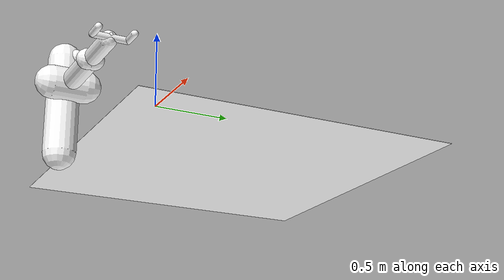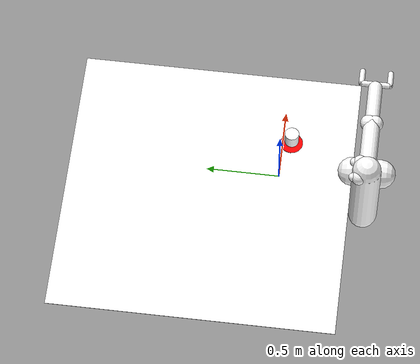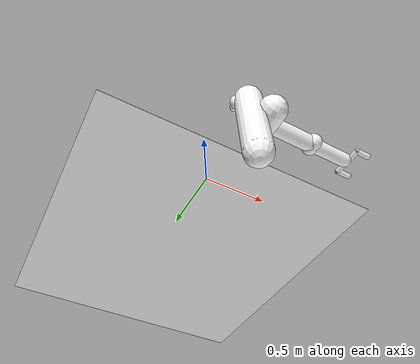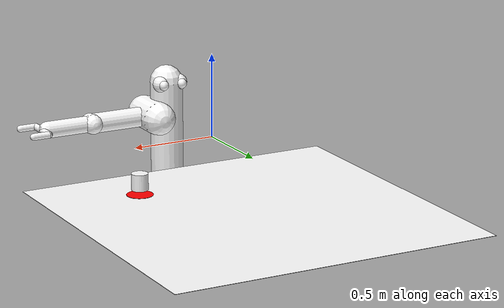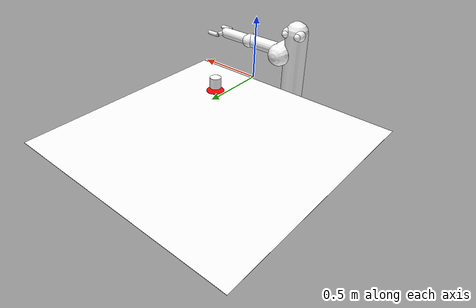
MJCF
<mujoco model="arm3d">
  <compiler inertiafromgeom="true" angle="radian" coordinate="local"/>
  <option timestep="0.01" gravity="0 0 0" iterations="20" integrator="Euler" />

  <asset>
    <texture type="2d" name="metal009_color" file="../textures/Metal009_2K-PNG/Metal009_2K-PNG_Color.png"/>
    <texture type="2d" name="oak_color" file="../textures/oak_veneer_01_2k/textures/oak_veneer_01_diff_2k.png"/>
    <texture type="2d" name="wood_table_color" file="../textures/wood_table_worn_2k/textures/wood_table_worn_diff_2k.png"/>

    <material name="metal009_material">
      <layer role="rgb" texture="metal009_color"/>
    </material>
    <material name="oak_wood_material">
      <layer role="rgb" texture="oak_color"/>
    </material>
    <material name="wood_table_worn_material">
      <layer role="rgb" texture="wood_table_color"/>
    </material>
  </asset>

  <default>
    <joint armature="0.04" damping="1" limited="true"/>
    <geom friction=".8 .1 .1" density="300" margin="0.002" condim="1" contype="0" conaffinity="0"/>
  </default>

  <worldbody>
    <light diffuse=".5 .5 .5" pos="0 0 3" dir="0 0 -1"/>
    <geom name="table" type="box" pos="0 0.5 -0.325" size="1 1 0.001" contype="1" conaffinity="1" material="wood_table_worn_material"/>

    <body name="r_shoulder_pan_link" pos="0 -0.6 0">

      <!-- 添加一个隐形的几何体来增加质量 -->
      <geom name="balance_mass" type="sphere" pos="0 0 0" size="0.1" density="500" rgba="0 0 0 0"/>

      <geom name="e1" type="sphere" pos="-0.06 0.05 0.2" size="0.05" material="wood_table_worn_material"/>
      <geom name="e2" type="sphere" pos="0.06 0.05 0.2" size="0.05" material="wood_table_worn_material"/>
      <geom name="e1p" type="sphere" pos="-0.06 0.09 0.2" size="0.03" material="metal009_material"/>
      <geom name="e2p" type="sphere" pos="0.06 0.09 0.2" size="0.03" material="metal009_material"/>
      <geom name="sp" type="capsule" fromto="0 0 -0.4 0 0 0.2" size="0.1" material="oak_wood_material"/>
      <joint name="r_shoulder_pan_joint" type="hinge" pos="0 0 0" axis="0 0 1" range="-2.2854 1.714602" damping="1.0"/>

      <body name="r_shoulder_lift_link" pos="0.1 0 0">

        <geom name="sl" type="capsule" fromto="0 -0.1 0 0 0.1 0" size="0.1" material="oak_wood_material"/>
        <joint name="r_shoulder_lift_joint" type="hinge" pos="0 0 0" axis="0 1 0" range="-0.5236 1.3963" damping="1.0"/>

        <body name="r_upper_arm_roll_link" pos="0 0 0">

          <geom name="uar" type="capsule" fromto="-0.1 0 0 0.1 0 0" size="0.02" material="metal009_material"/>
          <joint name="r_upper_arm_roll_joint" type="hinge" pos="0 0 0" axis="1 0 0" range="-1.5 1.7" damping="0.1"/>

          <body name="r_upper_arm_link" pos="0 0 0">
            <geom name="ua" type="capsule" fromto="0 0 0 0.4 0 0" size="0.06" material="oak_wood_material"/>

            <body name="r_elbow_flex_link" pos="0.4 0 0">

              <geom name="ef" type="capsule" fromto="0 -0.02 0 0.0 0.02 0" size="0.06" material="oak_wood_material"/>
              <joint name="r_elbow_flex_joint" type="hinge" pos="0 0 0" axis="0 1 0" range="-2.3213 0" damping="0.1"/>

              <body name="r_forearm_roll_link" pos="0 0 0">

                <geom name="fr" type="capsule" fromto="-0.1 0 0 0.1 0 0" size="0.02" material="oak_wood_material"/>
                <joint name="r_forearm_roll_joint" type="hinge" limited="true" pos="0 0 0" axis="1 0 0" damping=".1" range="-1.5 1.5"/>

                <body name="r_forearm_link" pos="0 0 0">
                  <geom name="fa" type="capsule" fromto="0 0 0 0.291 0 0" size="0.05" material="oak_wood_material"/>

                  <body name="r_wrist_flex_link" pos="0.321 0 0">
                    <geom name="wf" type="capsule" fromto="0 -0.02 0 0 0.02 0" size="0.01" material="metal009_material"/>
                    <joint name="r_wrist_flex_joint" type="hinge" pos="0 0 0" axis="0 1 0" range="-1.094 0" damping=".1"/>

                    <body name="r_wrist_roll_link" pos="0 0 0">
                      <joint name="r_wrist_roll_joint" type="hinge" pos="0 0 0" limited="true" axis="1 0 0" damping="0.1" range="-1.5 1.5"/>
                      <body name="tips_arm" pos="0 0 0">
                        <geom name="tip_arml" type="sphere" pos="0.1 -0.1 0." size="0.01" material="metal009_material"/>
                        <geom name="tip_armr" type="sphere" pos="0.1 0.1 0." size="0.01" material="metal009_material"/>
                      </body>
                      <geom name="_geom_0" type="capsule" fromto="0 -0.1 0 0.0 +0.1 0" size="0.02" contype="1" conaffinity="1" material="oak_wood_material"/>
                      <geom name="_geom_1" type="capsule" fromto="0 -0.1 0 0.1 -0.1 0" size="0.02" contype="1" conaffinity="1" material="oak_wood_material"/>
                      <geom name="_geom_2" type="capsule" fromto="0 +0.1 0 0.1 +0.1 0" size="0.02" contype="1" conaffinity="1" material="oak_wood_material"/>
                      <geom name="_geom_3" type="capsule" fromto="0 0 0 0 0 0.01" size="0.02" material="metal009_material"/>
                    </body>
                  </body>
                </body>
              </body>
            </body>
          </body>
        </body>
      </body>
    </body>
    <body name="object" pos="0.45 -0.05 -0.22">
      <geom rgba="1 1 1 1" type="cylinder" size="0.05 0.05 0.05" density="0.01" contype="1" conaffinity="0" material="oak_wood_material"/>
      <joint name="obj_slidey" type="slide" pos="0 0 0" axis="0 1 0" range="-10.3213 10.3" damping="0.5"/>
      <joint name="obj_slidex" type="slide" pos="0 0 0" axis="1 0 0" range="-10.3213 10.3" damping="0.5"/>
    </body>

    <body name="goal" pos="0.45 -0.05 -0.3">
      <geom rgba="1 0 0 1" type="cylinder" size="0.08 0.001 0.1" density="0.00001" contype="0" conaffinity="0" material="oak_wood_material"/>
      <joint name="goal_slidey" type="slide" pos="0 0 0" axis="0 1 0" range="-10.3213 10.3" damping="0.5"/>
      <joint name="goal_slidex" type="slide" pos="0 0 0" axis="1 0 0" range="-10.3213 10.3" damping="0.5"/>
    </body>
  </worldbody>
  <actuator>
    <motor joint="r_shoulder_pan_joint" ctrlrange="-2.0 2.0" ctrllimited="true" />
    <motor joint="r_shoulder_lift_joint" ctrlrange="-2.0 2.0" ctrllimited="true" />
    <motor joint="r_upper_arm_roll_joint" ctrlrange="-2.0 2.0" ctrllimited="true" />
    <motor joint="r_elbow_flex_joint" ctrlrange="-2.0 2.0" ctrllimited="true" />
    <motor joint="r_forearm_roll_joint" ctrlrange="-2.0 2.0" ctrllimited="true" />
    <motor joint="r_wrist_flex_joint" ctrlrange="-2.0 2.0" ctrllimited="true" />
    <motor joint="r_wrist_roll_joint" ctrlrange="-2.0 2.0" ctrllimited="true"/>
  </actuator>
</mujoco>
